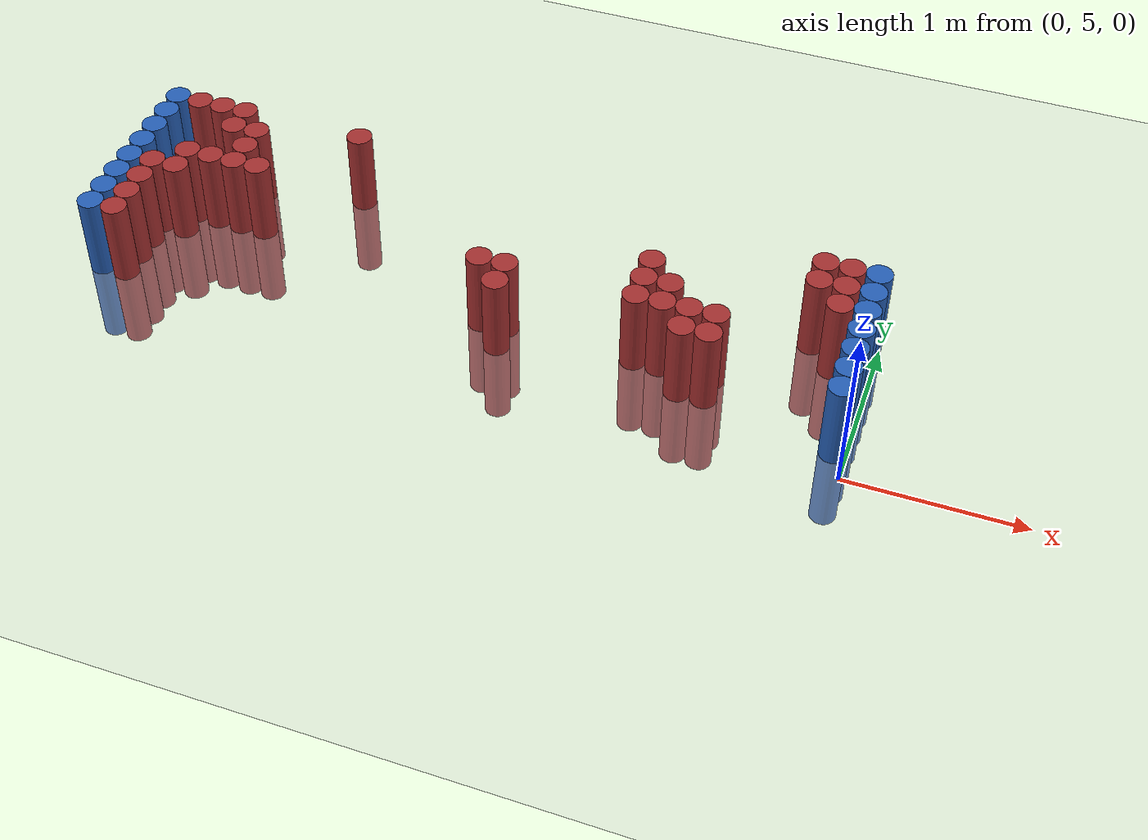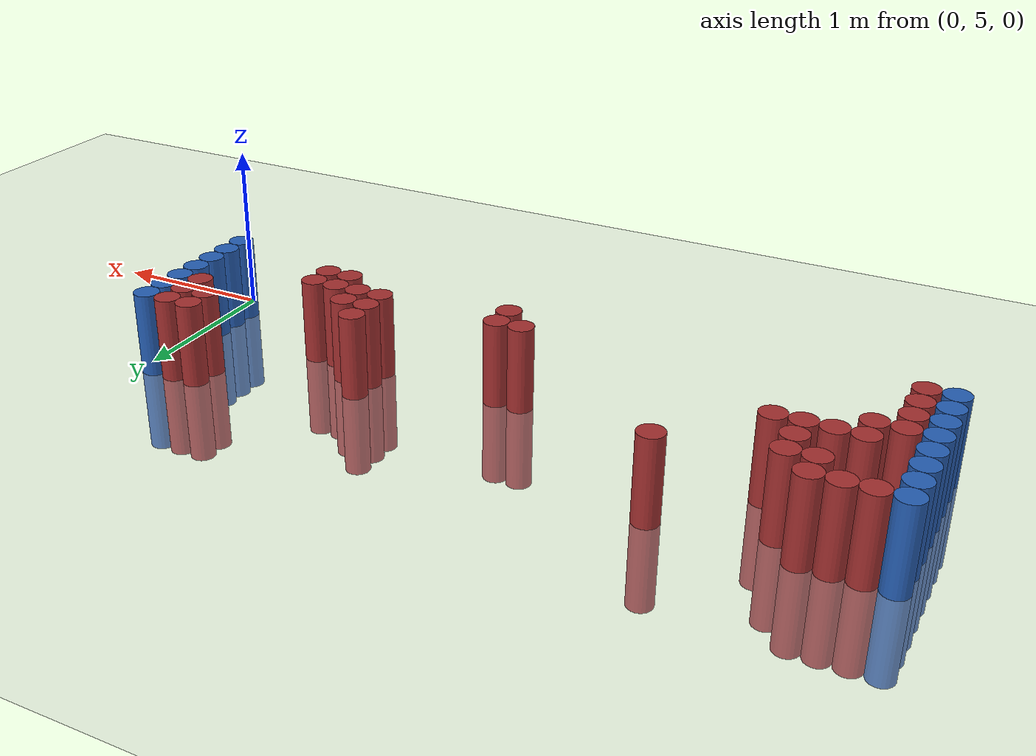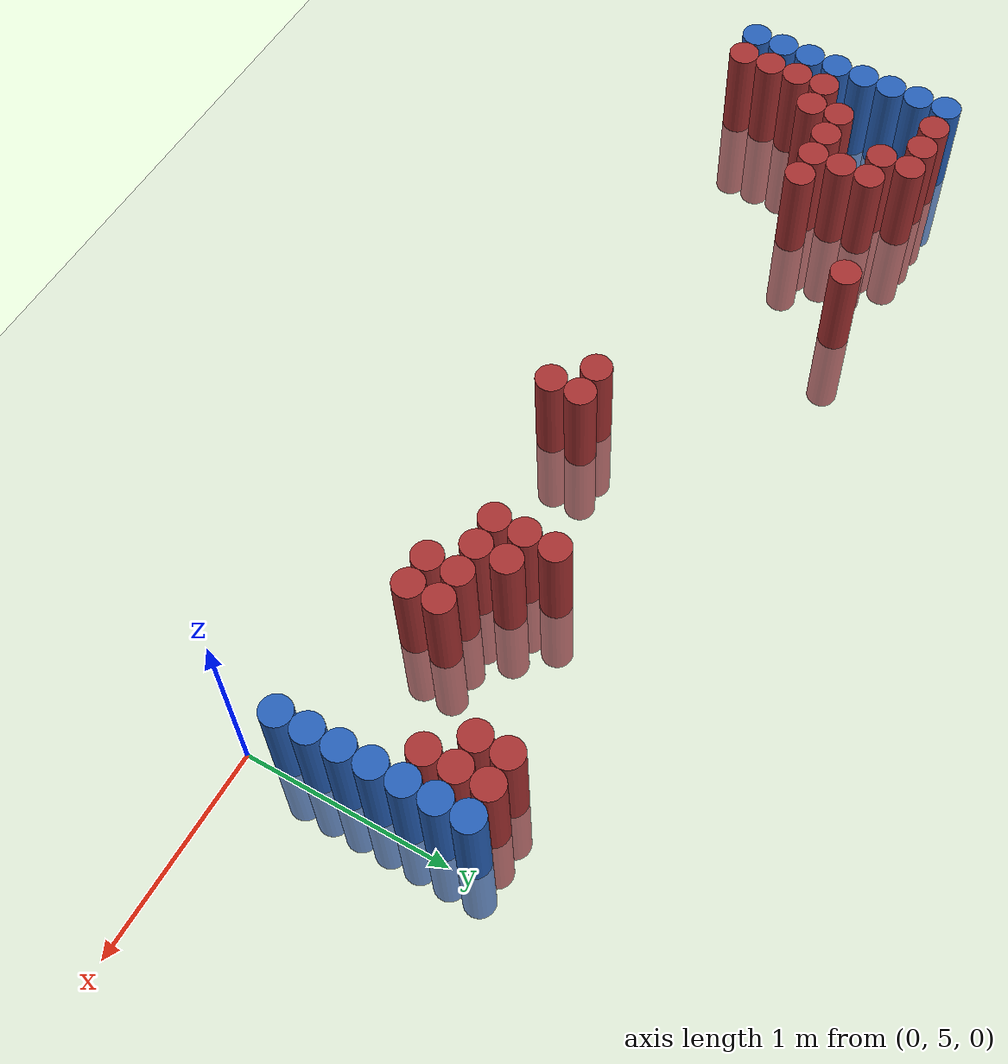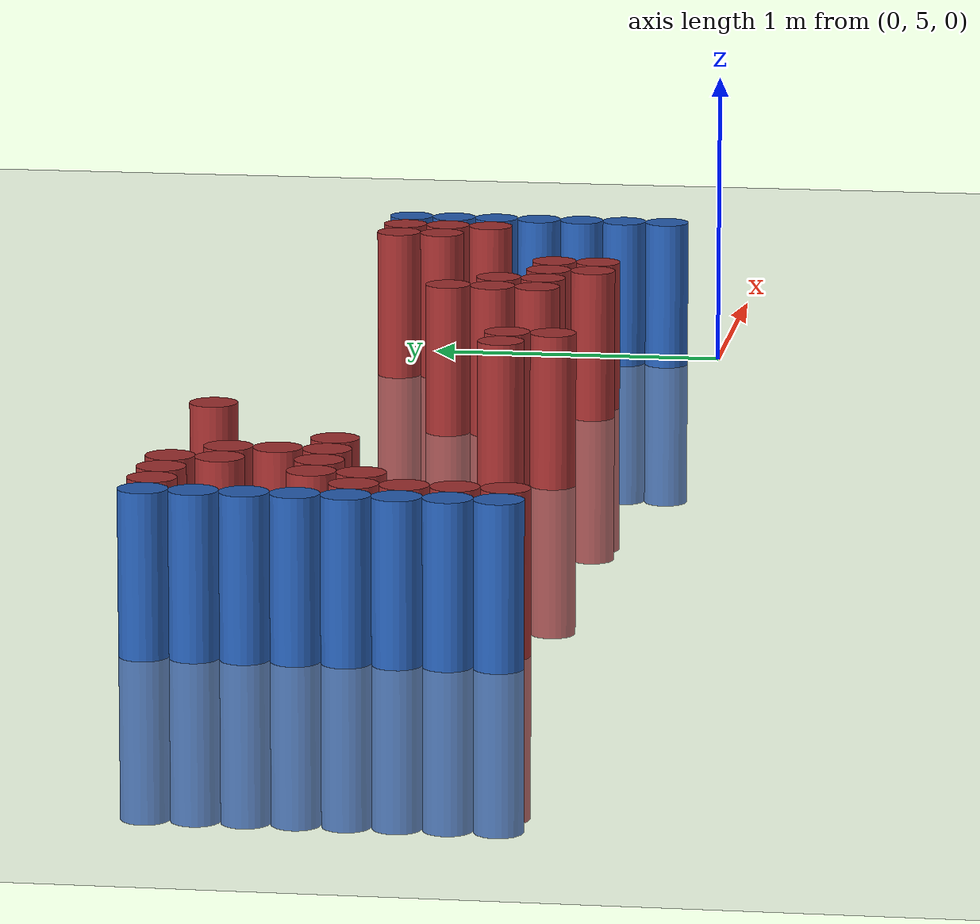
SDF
<sdf version="1.6">
 <world name="default">
  <model name="ground_plane">
   <static>1</static>
   <link name="link">
    <collision name="collision">
     <geometry><plane><normal>0 0 1</normal><size>100 100</size></plane></geometry>
     <surface><friction><ode><mu>100</mu><mu2>50</mu2></ode></friction></surface>
    </collision>
    <visual name="visual">
     <cast_shadows>0</cast_shadows>
     <geometry><plane><normal>0 0 1</normal><size>100 100</size></plane></geometry>
     <material>
      <script><uri>file://media/materials/scripts/gazebo.material</uri><name>Gazebo/Grey</name></script>
     </material>
    </visual>
   </link>
  </model>
  <model name="unit_cylinder_96">
   <static>1</static>
   <pose>-4.425000 5.175000 0.000000 0.000000 0.000000 0.000000</pose>
   <link name="link">
    <inertial>
     <mass>1</mass>
     <inertia><ixx>0.145833</ixx><ixy>0</ixy><ixz>0</ixz><iyy>0.145833</iyy><iyz>0</iyz><izz>0.125</izz></inertia>
    </inertial>
    <collision name="collision">
     <geometry><cylinder><radius>0.075000</radius><length>1</length></cylinder></geometry>
    </collision>
    <visual name="visual">
     <geometry><cylinder><radius>0.075000</radius><length>1</length></cylinder></geometry>
     <material>
      <ambient>0.152000 0.379000 0.720000 1</ambient>
      <diffuse>0.152000 0.379000 0.720000 1</diffuse>
     </material>
     <material>
      <script><name>Gazebo/Grey</name><uri>file://media/materials/scripts/gazebo.material</uri></script>
     </material>
    </visual>
   </link>
  </model>
  <model name="unit_cylinder_97">
   <static>1</static>
   <pose>-4.425000 5.325000 0.000000 0.000000 0.000000 0.000000</pose>
   <link name="link">
    <inertial>
     <mass>1</mass>
     <inertia><ixx>0.145833</ixx><ixy>0</ixy><ixz>0</ixz><iyy>0.145833</iyy><iyz>0</iyz><izz>0.125</izz></inertia>
    </inertial>
    <collision name="collision">
     <geometry><cylinder><radius>0.075000</radius><length>1</length></cylinder></geometry>
    </collision>
    <visual name="visual">
     <geometry><cylinder><radius>0.075000</radius><length>1</length></cylinder></geometry>
     <material>
      <ambient>0.152000 0.379000 0.720000 1</ambient>
      <diffuse>0.152000 0.379000 0.720000 1</diffuse>
     </material>
     <material>
      <script><name>Gazebo/Grey</name><uri>file://media/materials/scripts/gazebo.material</uri></script>
     </material>
    </visual>
   </link>
  </model>
  <model name="unit_cylinder_98">
   <static>1</static>
   <pose>-4.425000 5.475000 0.000000 0.000000 0.000000 0.000000</pose>
   <link name="link">
    <inertial>
     <mass>1</mass>
     <inertia><ixx>0.145833</ixx><ixy>0</ixy><ixz>0</ixz><iyy>0.145833</iyy><iyz>0</iyz><izz>0.125</izz></inertia>
    </inertial>
    <collision name="collision">
     <geometry><cylinder><radius>0.075000</radius><length>1</length></cylinder></geometry>
    </collision>
    <visual name="visual">
     <geometry><cylinder><radius>0.075000</radius><length>1</length></cylinder></geometry>
     <material>
      <ambient>0.152000 0.379000 0.720000 1</ambient>
      <diffuse>0.152000 0.379000 0.720000 1</diffuse>
     </material>
     <material>
      <script><name>Gazebo/Grey</name><uri>file://media/materials/scripts/gazebo.material</uri></script>
     </material>
    </visual>
   </link>
  </model>
  <model name="unit_cylinder_99">
   <static>1</static>
   <pose>-4.425000 5.625000 0.000000 0.000000 0.000000 0.000000</pose>
   <link name="link">
    <inertial>
     <mass>1</mass>
     <inertia><ixx>0.145833</ixx><ixy>0</ixy><ixz>0</ixz><iyy>0.145833</iyy><iyz>0</iyz><izz>0.125</izz></inertia>
    </inertial>
    <collision name="collision">
     <geometry><cylinder><radius>0.075000</radius><length>1</length></cylinder></geometry>
    </collision>
    <visual name="visual">
     <geometry><cylinder><radius>0.075000</radius><length>1</length></cylinder></geometry>
     <material>
      <ambient>0.152000 0.379000 0.720000 1</ambient>
      <diffuse>0.152000 0.379000 0.720000 1</diffuse>
     </material>
     <material>
      <script><name>Gazebo/Grey</name><uri>file://media/materials/scripts/gazebo.material</uri></script>
     </material>
    </visual>
   </link>
  </model>
  <model name="unit_cylinder_100">
   <static>1</static>
   <pose>-4.425000 5.775000 0.000000 0.000000 0.000000 0.000000</pose>
   <link name="link">
    <inertial>
     <mass>1</mass>
     <inertia><ixx>0.145833</ixx><ixy>0</ixy><ixz>0</ixz><iyy>0.145833</iyy><iyz>0</iyz><izz>0.125</izz></inertia>
    </inertial>
    <collision name="collision">
     <geometry><cylinder><radius>0.075000</radius><length>1</length></cylinder></geometry>
    </collision>
    <visual name="visual">
     <geometry><cylinder><radius>0.075000</radius><length>1</length></cylinder></geometry>
     <material>
      <ambient>0.152000 0.379000 0.720000 1</ambient>
      <diffuse>0.152000 0.379000 0.720000 1</diffuse>
     </material>
     <material>
      <script><name>Gazebo/Grey</name><uri>file://media/materials/scripts/gazebo.material</uri></script>
     </material>
    </visual>
   </link>
  </model>
  <model name="unit_cylinder_101">
   <static>1</static>
   <pose>-4.425000 5.925000 0.000000 0.000000 0.000000 0.000000</pose>
   <link name="link">
    <inertial>
     <mass>1</mass>
     <inertia><ixx>0.145833</ixx><ixy>0</ixy><ixz>0</ixz><iyy>0.145833</iyy><iyz>0</iyz><izz>0.125</izz></inertia>
    </inertial>
    <collision name="collision">
     <geometry><cylinder><radius>0.075000</radius><length>1</length></cylinder></geometry>
    </collision>
    <visual name="visual">
     <geometry><cylinder><radius>0.075000</radius><length>1</length></cylinder></geometry>
     <material>
      <ambient>0.152000 0.379000 0.720000 1</ambient>
      <diffuse>0.152000 0.379000 0.720000 1</diffuse>
     </material>
     <material>
      <script><name>Gazebo/Grey</name><uri>file://media/materials/scripts/gazebo.material</uri></script>
     </material>
    </visual>
   </link>
  </model>
  <model name="unit_cylinder_102">
   <static>1</static>
   <pose>-4.425000 6.075000 0.000000 0.000000 0.000000 0.000000</pose>
   <link name="link">
    <inertial>
     <mass>1</mass>
     <inertia><ixx>0.145833</ixx><ixy>0</ixy><ixz>0</ixz><iyy>0.145833</iyy><iyz>0</iyz><izz>0.125</izz></inertia>
    </inertial>
    <collision name="collision">
     <geometry><cylinder><radius>0.075000</radius><length>1</length></cylinder></geometry>
    </collision>
    <visual name="visual">
     <geometry><cylinder><radius>0.075000</radius><length>1</length></cylinder></geometry>
     <material>
      <ambient>0.152000 0.379000 0.720000 1</ambient>
      <diffuse>0.152000 0.379000 0.720000 1</diffuse>
     </material>
     <material>
      <script><name>Gazebo/Grey</name><uri>file://media/materials/scripts/gazebo.material</uri></script>
     </material>
    </visual>
   </link>
  </model>
  <model name="unit_cylinder_103">
   <static>1</static>
   <pose>-4.425000 6.225000 0.000000 0.000000 0.000000 0.000000</pose>
   <link name="link">
    <inertial>
     <mass>1</mass>
     <inertia><ixx>0.145833</ixx><ixy>0</ixy><ixz>0</ixz><iyy>0.145833</iyy><iyz>0</iyz><izz>0.125</izz></inertia>
    </inertial>
    <collision name="collision">
     <geometry><cylinder><radius>0.075000</radius><length>1</length></cylinder></geometry>
    </collision>
    <visual name="visual">
     <geometry><cylinder><radius>0.075000</radius><length>1</length></cylinder></geometry>
     <material>
      <ambient>0.152000 0.379000 0.720000 1</ambient>
      <diffuse>0.152000 0.379000 0.720000 1</diffuse>
     </material>
     <material>
      <script><name>Gazebo/Grey</name><uri>file://media/materials/scripts/gazebo.material</uri></script>
     </material>
    </visual>
   </link>
  </model>
  <model name="unit_cylinder_126">
   <static>1</static>
   <pose>-4.275000 5.175000 0.000000 0.000000 0.000000 0.000000</pose>
   <link name="link">
    <inertial>
     <mass>1</mass>
     <inertia><ixx>0.145833</ixx><ixy>0</ixy><ixz>0</ixz><iyy>0.145833</iyy><iyz>0</iyz><izz>0.125</izz></inertia>
    </inertial>
    <collision name="collision">
     <geometry><cylinder><radius>0.075000</radius><length>1</length></cylinder></geometry>
    </collision>
    <visual name="visual">
     <geometry><cylinder><radius>0.075000</radius><length>1</length></cylinder></geometry>
     <material>
      <ambient>0.648000 0.192000 0.192000 1</ambient>
      <diffuse>0.648000 0.192000 0.192000 1</diffuse>
     </material>
     <material>
      <script><name>Gazebo/Grey</name><uri>file://media/materials/scripts/gazebo.material</uri></script>
     </material>
    </visual>
   </link>
  </model>
  <model name="unit_cylinder_127">
   <static>1</static>
   <pose>-4.275000 5.325000 0.000000 0.000000 0.000000 0.000000</pose>
   <link name="link">
    <inertial>
     <mass>1</mass>
     <inertia><ixx>0.145833</ixx><ixy>0</ixy><ixz>0</ixz><iyy>0.145833</iyy><iyz>0</iyz><izz>0.125</izz></inertia>
    </inertial>
    <collision name="collision">
     <geometry><cylinder><radius>0.075000</radius><length>1</length></cylinder></geometry>
    </collision>
    <visual name="visual">
     <geometry><cylinder><radius>0.075000</radius><length>1</length></cylinder></geometry>
     <material>
      <ambient>0.648000 0.192000 0.192000 1</ambient>
      <diffuse>0.648000 0.192000 0.192000 1</diffuse>
     </material>
     <material>
      <script><name>Gazebo/Grey</name><uri>file://media/materials/scripts/gazebo.material</uri></script>
     </material>
    </visual>
   </link>
  </model>
  <model name="unit_cylinder_128">
   <static>1</static>
   <pose>-4.275000 5.475000 0.000000 0.000000 0.000000 0.000000</pose>
   <link name="link">
    <inertial>
     <mass>1</mass>
     <inertia><ixx>0.145833</ixx><ixy>0</ixy><ixz>0</ixz><iyy>0.145833</iyy><iyz>0</iyz><izz>0.125</izz></inertia>
    </inertial>
    <collision name="collision">
     <geometry><cylinder><radius>0.075000</radius><length>1</length></cylinder></geometry>
    </collision>
    <visual name="visual">
     <geometry><cylinder><radius>0.075000</radius><length>1</length></cylinder></geometry>
     <material>
      <ambient>0.648000 0.192000 0.192000 1</ambient>
      <diffuse>0.648000 0.192000 0.192000 1</diffuse>
     </material>
     <material>
      <script><name>Gazebo/Grey</name><uri>file://media/materials/scripts/gazebo.material</uri></script>
     </material>
    </visual>
   </link>
  </model>
  <model name="unit_cylinder_129">
   <static>1</static>
   <pose>-4.275000 5.625000 0.000000 0.000000 0.000000 0.000000</pose>
   <link name="link">
    <inertial>
     <mass>1</mass>
     <inertia><ixx>0.145833</ixx><ixy>0</ixy><ixz>0</ixz><iyy>0.145833</iyy><iyz>0</iyz><izz>0.125</izz></inertia>
    </inertial>
    <collision name="collision">
     <geometry><cylinder><radius>0.075000</radius><length>1</length></cylinder></geometry>
    </collision>
    <visual name="visual">
     <geometry><cylinder><radius>0.075000</radius><length>1</length></cylinder></geometry>
     <material>
      <ambient>0.648000 0.192000 0.192000 1</ambient>
      <diffuse>0.648000 0.192000 0.192000 1</diffuse>
     </material>
     <material>
      <script><name>Gazebo/Grey</name><uri>file://media/materials/scripts/gazebo.material</uri></script>
     </material>
    </visual>
   </link>
  </model>
  <model name="unit_cylinder_130">
   <static>1</static>
   <pose>-4.275000 6.225000 0.000000 0.000000 0.000000 0.000000</pose>
   <link name="link">
    <inertial>
     <mass>1</mass>
     <inertia><ixx>0.145833</ixx><ixy>0</ixy><ixz>0</ixz><iyy>0.145833</iyy><iyz>0</iyz><izz>0.125</izz></inertia>
    </inertial>
    <collision name="collision">
     <geometry><cylinder><radius>0.075000</radius><length>1</length></cylinder></geometry>
    </collision>
    <visual name="visual">
     <geometry><cylinder><radius>0.075000</radius><length>1</length></cylinder></geometry>
     <material>
      <ambient>0.648000 0.192000 0.192000 1</ambient>
      <diffuse>0.648000 0.192000 0.192000 1</diffuse>
     </material>
     <material>
      <script><name>Gazebo/Grey</name><uri>file://media/materials/scripts/gazebo.material</uri></script>
     </material>
    </visual>
   </link>
  </model>
  <model name="unit_cylinder_140">
   <static>1</static>
   <pose>-4.125000 5.625000 0.000000 0.000000 0.000000 0.000000</pose>
   <link name="link">
    <inertial>
     <mass>1</mass>
     <inertia><ixx>0.145833</ixx><ixy>0</ixy><ixz>0</ixz><iyy>0.145833</iyy><iyz>0</iyz><izz>0.125</izz></inertia>
    </inertial>
    <collision name="collision">
     <geometry><cylinder><radius>0.075000</radius><length>1</length></cylinder></geometry>
    </collision>
    <visual name="visual">
     <geometry><cylinder><radius>0.075000</radius><length>1</length></cylinder></geometry>
     <material>
      <ambient>0.648000 0.192000 0.192000 1</ambient>
      <diffuse>0.648000 0.192000 0.192000 1</diffuse>
     </material>
     <material>
      <script><name>Gazebo/Grey</name><uri>file://media/materials/scripts/gazebo.material</uri></script>
     </material>
    </visual>
   </link>
  </model>
  <model name="unit_cylinder_141">
   <static>1</static>
   <pose>-4.125000 5.775000 0.000000 0.000000 0.000000 0.000000</pose>
   <link name="link">
    <inertial>
     <mass>1</mass>
     <inertia><ixx>0.145833</ixx><ixy>0</ixy><ixz>0</ixz><iyy>0.145833</iyy><iyz>0</iyz><izz>0.125</izz></inertia>
    </inertial>
    <collision name="collision">
     <geometry><cylinder><radius>0.075000</radius><length>1</length></cylinder></geometry>
    </collision>
    <visual name="visual">
     <geometry><cylinder><radius>0.075000</radius><length>1</length></cylinder></geometry>
     <material>
      <ambient>0.648000 0.192000 0.192000 1</ambient>
      <diffuse>0.648000 0.192000 0.192000 1</diffuse>
     </material>
     <material>
      <script><name>Gazebo/Grey</name><uri>file://media/materials/scripts/gazebo.material</uri></script>
     </material>
    </visual>
   </link>
  </model>
  <model name="unit_cylinder_142">
   <static>1</static>
   <pose>-4.125000 6.225000 0.000000 0.000000 0.000000 0.000000</pose>
   <link name="link">
    <inertial>
     <mass>1</mass>
     <inertia><ixx>0.145833</ixx><ixy>0</ixy><ixz>0</ixz><iyy>0.145833</iyy><iyz>0</iyz><izz>0.125</izz></inertia>
    </inertial>
    <collision name="collision">
     <geometry><cylinder><radius>0.075000</radius><length>1</length></cylinder></geometry>
    </collision>
    <visual name="visual">
     <geometry><cylinder><radius>0.075000</radius><length>1</length></cylinder></geometry>
     <material>
      <ambient>0.648000 0.192000 0.192000 1</ambient>
      <diffuse>0.648000 0.192000 0.192000 1</diffuse>
     </material>
     <material>
      <script><name>Gazebo/Grey</name><uri>file://media/materials/scripts/gazebo.material</uri></script>
     </material>
    </visual>
   </link>
  </model>
  <model name="unit_cylinder_153">
   <static>1</static>
   <pose>-3.975000 5.775000 0.000000 0.000000 0.000000 0.000000</pose>
   <link name="link">
    <inertial>
     <mass>1</mass>
     <inertia><ixx>0.145833</ixx><ixy>0</ixy><ixz>0</ixz><iyy>0.145833</iyy><iyz>0</iyz><izz>0.125</izz></inertia>
    </inertial>
    <collision name="collision">
     <geometry><cylinder><radius>0.075000</radius><length>1</length></cylinder></geometry>
    </collision>
    <visual name="visual">
     <geometry><cylinder><radius>0.075000</radius><length>1</length></cylinder></geometry>
     <material>
      <ambient>0.648000 0.192000 0.192000 1</ambient>
      <diffuse>0.648000 0.192000 0.192000 1</diffuse>
     </material>
     <material>
      <script><name>Gazebo/Grey</name><uri>file://media/materials/scripts/gazebo.material</uri></script>
     </material>
    </visual>
   </link>
  </model>
  <model name="unit_cylinder_154">
   <static>1</static>
   <pose>-3.975000 6.075000 0.000000 0.000000 0.000000 0.000000</pose>
   <link name="link">
    <inertial>
     <mass>1</mass>
     <inertia><ixx>0.145833</ixx><ixy>0</ixy><ixz>0</ixz><iyy>0.145833</iyy><iyz>0</iyz><izz>0.125</izz></inertia>
    </inertial>
    <collision name="collision">
     <geometry><cylinder><radius>0.075000</radius><length>1</length></cylinder></geometry>
    </collision>
    <visual name="visual">
     <geometry><cylinder><radius>0.075000</radius><length>1</length></cylinder></geometry>
     <material>
      <ambient>0.648000 0.192000 0.192000 1</ambient>
      <diffuse>0.648000 0.192000 0.192000 1</diffuse>
     </material>
     <material>
      <script><name>Gazebo/Grey</name><uri>file://media/materials/scripts/gazebo.material</uri></script>
     </material>
    </visual>
   </link>
  </model>
  <model name="unit_cylinder_155">
   <static>1</static>
   <pose>-3.975000 6.225000 0.000000 0.000000 0.000000 0.000000</pose>
   <link name="link">
    <inertial>
     <mass>1</mass>
     <inertia><ixx>0.145833</ixx><ixy>0</ixy><ixz>0</ixz><iyy>0.145833</iyy><iyz>0</iyz><izz>0.125</izz></inertia>
    </inertial>
    <collision name="collision">
     <geometry><cylinder><radius>0.075000</radius><length>1</length></cylinder></geometry>
    </collision>
    <visual name="visual">
     <geometry><cylinder><radius>0.075000</radius><length>1</length></cylinder></geometry>
     <material>
      <ambient>0.648000 0.192000 0.192000 1</ambient>
      <diffuse>0.648000 0.192000 0.192000 1</diffuse>
     </material>
     <material>
      <script><name>Gazebo/Grey</name><uri>file://media/materials/scripts/gazebo.material</uri></script>
     </material>
    </visual>
   </link>
  </model>
  <model name="unit_cylinder_160">
   <static>1</static>
   <pose>-3.825000 5.775000 0.000000 0.000000 0.000000 0.000000</pose>
   <link name="link">
    <inertial>
     <mass>1</mass>
     <inertia><ixx>0.145833</ixx><ixy>0</ixy><ixz>0</ixz><iyy>0.145833</iyy><iyz>0</iyz><izz>0.125</izz></inertia>
    </inertial>
    <collision name="collision">
     <geometry><cylinder><radius>0.075000</radius><length>1</length></cylinder></geometry>
    </collision>
    <visual name="visual">
     <geometry><cylinder><radius>0.075000</radius><length>1</length></cylinder></geometry>
     <material>
      <ambient>0.648000 0.192000 0.192000 1</ambient>
      <diffuse>0.648000 0.192000 0.192000 1</diffuse>
     </material>
     <material>
      <script><name>Gazebo/Grey</name><uri>file://media/materials/scripts/gazebo.material</uri></script>
     </material>
    </visual>
   </link>
  </model>
  <model name="unit_cylinder_161">
   <static>1</static>
   <pose>-3.825000 5.925000 0.000000 0.000000 0.000000 0.000000</pose>
   <link name="link">
    <inertial>
     <mass>1</mass>
     <inertia><ixx>0.145833</ixx><ixy>0</ixy><ixz>0</ixz><iyy>0.145833</iyy><iyz>0</iyz><izz>0.125</izz></inertia>
    </inertial>
    <collision name="collision">
     <geometry><cylinder><radius>0.075000</radius><length>1</length></cylinder></geometry>
    </collision>
    <visual name="visual">
     <geometry><cylinder><radius>0.075000</radius><length>1</length></cylinder></geometry>
     <material>
      <ambient>0.648000 0.192000 0.192000 1</ambient>
      <diffuse>0.648000 0.192000 0.192000 1</diffuse>
     </material>
     <material>
      <script><name>Gazebo/Grey</name><uri>file://media/materials/scripts/gazebo.material</uri></script>
     </material>
    </visual>
   </link>
  </model>
  <model name="unit_cylinder_162">
   <static>1</static>
   <pose>-3.825000 6.075000 0.000000 0.000000 0.000000 0.000000</pose>
   <link name="link">
    <inertial>
     <mass>1</mass>
     <inertia><ixx>0.145833</ixx><ixy>0</ixy><ixz>0</ixz><iyy>0.145833</iyy><iyz>0</iyz><izz>0.125</izz></inertia>
    </inertial>
    <collision name="collision">
     <geometry><cylinder><radius>0.075000</radius><length>1</length></cylinder></geometry>
    </collision>
    <visual name="visual">
     <geometry><cylinder><radius>0.075000</radius><length>1</length></cylinder></geometry>
     <material>
      <ambient>0.648000 0.192000 0.192000 1</ambient>
      <diffuse>0.648000 0.192000 0.192000 1</diffuse>
     </material>
     <material>
      <script><name>Gazebo/Grey</name><uri>file://media/materials/scripts/gazebo.material</uri></script>
     </material>
    </visual>
   </link>
  </model>
  <model name="unit_cylinder_166">
   <static>1</static>
   <pose>-3.675000 5.775000 0.000000 0.000000 0.000000 0.000000</pose>
   <link name="link">
    <inertial>
     <mass>1</mass>
     <inertia><ixx>0.145833</ixx><ixy>0</ixy><ixz>0</ixz><iyy>0.145833</iyy><iyz>0</iyz><izz>0.125</izz></inertia>
    </inertial>
    <collision name="collision">
     <geometry><cylinder><radius>0.075000</radius><length>1</length></cylinder></geometry>
    </collision>
    <visual name="visual">
     <geometry><cylinder><radius>0.075000</radius><length>1</length></cylinder></geometry>
     <material>
      <ambient>0.648000 0.192000 0.192000 1</ambient>
      <diffuse>0.648000 0.192000 0.192000 1</diffuse>
     </material>
     <material>
      <script><name>Gazebo/Grey</name><uri>file://media/materials/scripts/gazebo.material</uri></script>
     </material>
    </visual>
   </link>
  </model>
  <model name="unit_cylinder_179">
   <static>1</static>
   <pose>-3.225000 6.225000 0.000000 0.000000 0.000000 0.000000</pose>
   <link name="link">
    <inertial>
     <mass>1</mass>
     <inertia><ixx>0.145833</ixx><ixy>0</ixy><ixz>0</ixz><iyy>0.145833</iyy><iyz>0</iyz><izz>0.125</izz></inertia>
    </inertial>
    <collision name="collision">
     <geometry><cylinder><radius>0.075000</radius><length>1</length></cylinder></geometry>
    </collision>
    <visual name="visual">
     <geometry><cylinder><radius>0.075000</radius><length>1</length></cylinder></geometry>
     <material>
      <ambient>0.648000 0.192000 0.192000 1</ambient>
      <diffuse>0.648000 0.192000 0.192000 1</diffuse>
     </material>
     <material>
      <script><name>Gazebo/Grey</name><uri>file://media/materials/scripts/gazebo.material</uri></script>
     </material>
    </visual>
   </link>
  </model>
  <model name="unit_cylinder_212">
   <static>1</static>
   <pose>-2.175000 5.475000 0.000000 0.000000 0.000000 0.000000</pose>
   <link name="link">
    <inertial>
     <mass>1</mass>
     <inertia><ixx>0.145833</ixx><ixy>0</ixy><ixz>0</ixz><iyy>0.145833</iyy><iyz>0</iyz><izz>0.125</izz></inertia>
    </inertial>
    <collision name="collision">
     <geometry><cylinder><radius>0.075000</radius><length>1</length></cylinder></geometry>
    </collision>
    <visual name="visual">
     <geometry><cylinder><radius>0.075000</radius><length>1</length></cylinder></geometry>
     <material>
      <ambient>0.648000 0.192000 0.192000 1</ambient>
      <diffuse>0.648000 0.192000 0.192000 1</diffuse>
     </material>
     <material>
      <script><name>Gazebo/Grey</name><uri>file://media/materials/scripts/gazebo.material</uri></script>
     </material>
    </visual>
   </link>
  </model>
  <model name="unit_cylinder_216">
   <static>1</static>
   <pose>-2.025000 5.325000 0.000000 0.000000 0.000000 0.000000</pose>
   <link name="link">
    <inertial>
     <mass>1</mass>
     <inertia><ixx>0.145833</ixx><ixy>0</ixy><ixz>0</ixz><iyy>0.145833</iyy><iyz>0</iyz><izz>0.125</izz></inertia>
    </inertial>
    <collision name="collision">
     <geometry><cylinder><radius>0.075000</radius><length>1</length></cylinder></geometry>
    </collision>
    <visual name="visual">
     <geometry><cylinder><radius>0.075000</radius><length>1</length></cylinder></geometry>
     <material>
      <ambient>0.648000 0.192000 0.192000 1</ambient>
      <diffuse>0.648000 0.192000 0.192000 1</diffuse>
     </material>
     <material>
      <script><name>Gazebo/Grey</name><uri>file://media/materials/scripts/gazebo.material</uri></script>
     </material>
    </visual>
   </link>
  </model>
  <model name="unit_cylinder_217">
   <static>1</static>
   <pose>-2.025000 5.475000 0.000000 0.000000 0.000000 0.000000</pose>
   <link name="link">
    <inertial>
     <mass>1</mass>
     <inertia><ixx>0.145833</ixx><ixy>0</ixy><ixz>0</ixz><iyy>0.145833</iyy><iyz>0</iyz><izz>0.125</izz></inertia>
    </inertial>
    <collision name="collision">
     <geometry><cylinder><radius>0.075000</radius><length>1</length></cylinder></geometry>
    </collision>
    <visual name="visual">
     <geometry><cylinder><radius>0.075000</radius><length>1</length></cylinder></geometry>
     <material>
      <ambient>0.648000 0.192000 0.192000 1</ambient>
      <diffuse>0.648000 0.192000 0.192000 1</diffuse>
     </material>
     <material>
      <script><name>Gazebo/Grey</name><uri>file://media/materials/scripts/gazebo.material</uri></script>
     </material>
    </visual>
   </link>
  </model>
  <model name="unit_cylinder_222">
   <static>1</static>
   <pose>-1.275000 5.475000 0.000000 0.000000 0.000000 0.000000</pose>
   <link name="link">
    <inertial>
     <mass>1</mass>
     <inertia><ixx>0.145833</ixx><ixy>0</ixy><ixz>0</ixz><iyy>0.145833</iyy><iyz>0</iyz><izz>0.125</izz></inertia>
    </inertial>
    <collision name="collision">
     <geometry><cylinder><radius>0.075000</radius><length>1</length></cylinder></geometry>
    </collision>
    <visual name="visual">
     <geometry><cylinder><radius>0.075000</radius><length>1</length></cylinder></geometry>
     <material>
      <ambient>0.648000 0.192000 0.192000 1</ambient>
      <diffuse>0.648000 0.192000 0.192000 1</diffuse>
     </material>
     <material>
      <script><name>Gazebo/Grey</name><uri>file://media/materials/scripts/gazebo.material</uri></script>
     </material>
    </visual>
   </link>
  </model>
  <model name="unit_cylinder_223">
   <static>1</static>
   <pose>-1.275000 5.625000 0.000000 0.000000 0.000000 0.000000</pose>
   <link name="link">
    <inertial>
     <mass>1</mass>
     <inertia><ixx>0.145833</ixx><ixy>0</ixy><ixz>0</ixz><iyy>0.145833</iyy><iyz>0</iyz><izz>0.125</izz></inertia>
    </inertial>
    <collision name="collision">
     <geometry><cylinder><radius>0.075000</radius><length>1</length></cylinder></geometry>
    </collision>
    <visual name="visual">
     <geometry><cylinder><radius>0.075000</radius><length>1</length></cylinder></geometry>
     <material>
      <ambient>0.648000 0.192000 0.192000 1</ambient>
      <diffuse>0.648000 0.192000 0.192000 1</diffuse>
     </material>
     <material>
      <script><name>Gazebo/Grey</name><uri>file://media/materials/scripts/gazebo.material</uri></script>
     </material>
    </visual>
   </link>
  </model>
  <model name="unit_cylinder_224">
   <static>1</static>
   <pose>-1.275000 5.775000 0.000000 0.000000 0.000000 0.000000</pose>
   <link name="link">
    <inertial>
     <mass>1</mass>
     <inertia><ixx>0.145833</ixx><ixy>0</ixy><ixz>0</ixz><iyy>0.145833</iyy><iyz>0</iyz><izz>0.125</izz></inertia>
    </inertial>
    <collision name="collision">
     <geometry><cylinder><radius>0.075000</radius><length>1</length></cylinder></geometry>
    </collision>
    <visual name="visual">
     <geometry><cylinder><radius>0.075000</radius><length>1</length></cylinder></geometry>
     <material>
      <ambient>0.648000 0.192000 0.192000 1</ambient>
      <diffuse>0.648000 0.192000 0.192000 1</diffuse>
     </material>
     <material>
      <script><name>Gazebo/Grey</name><uri>file://media/materials/scripts/gazebo.material</uri></script>
     </material>
    </visual>
   </link>
  </model>
  <model name="unit_cylinder_227">
   <static>1</static>
   <pose>-1.125000 5.475000 0.000000 0.000000 0.000000 0.000000</pose>
   <link name="link">
    <inertial>
     <mass>1</mass>
     <inertia><ixx>0.145833</ixx><ixy>0</ixy><ixz>0</ixz><iyy>0.145833</iyy><iyz>0</iyz><izz>0.125</izz></inertia>
    </inertial>
    <collision name="collision">
     <geometry><cylinder><radius>0.075000</radius><length>1</length></cylinder></geometry>
    </collision>
    <visual name="visual">
     <geometry><cylinder><radius>0.075000</radius><length>1</length></cylinder></geometry>
     <material>
      <ambient>0.648000 0.192000 0.192000 1</ambient>
      <diffuse>0.648000 0.192000 0.192000 1</diffuse>
     </material>
     <material>
      <script><name>Gazebo/Grey</name><uri>file://media/materials/scripts/gazebo.material</uri></script>
     </material>
    </visual>
   </link>
  </model>
  <model name="unit_cylinder_228">
   <static>1</static>
   <pose>-1.125000 5.625000 0.000000 0.000000 0.000000 0.000000</pose>
   <link name="link">
    <inertial>
     <mass>1</mass>
     <inertia><ixx>0.145833</ixx><ixy>0</ixy><ixz>0</ixz><iyy>0.145833</iyy><iyz>0</iyz><izz>0.125</izz></inertia>
    </inertial>
    <collision name="collision">
     <geometry><cylinder><radius>0.075000</radius><length>1</length></cylinder></geometry>
    </collision>
    <visual name="visual">
     <geometry><cylinder><radius>0.075000</radius><length>1</length></cylinder></geometry>
     <material>
      <ambient>0.648000 0.192000 0.192000 1</ambient>
      <diffuse>0.648000 0.192000 0.192000 1</diffuse>
     </material>
     <material>
      <script><name>Gazebo/Grey</name><uri>file://media/materials/scripts/gazebo.material</uri></script>
     </material>
    </visual>
   </link>
  </model>
  <model name="unit_cylinder_230">
   <static>1</static>
   <pose>-0.975000 5.325000 0.000000 0.000000 0.000000 0.000000</pose>
   <link name="link">
    <inertial>
     <mass>1</mass>
     <inertia><ixx>0.145833</ixx><ixy>0</ixy><ixz>0</ixz><iyy>0.145833</iyy><iyz>0</iyz><izz>0.125</izz></inertia>
    </inertial>
    <collision name="collision">
     <geometry><cylinder><radius>0.075000</radius><length>1</length></cylinder></geometry>
    </collision>
    <visual name="visual">
     <geometry><cylinder><radius>0.075000</radius><length>1</length></cylinder></geometry>
     <material>
      <ambient>0.648000 0.192000 0.192000 1</ambient>
      <diffuse>0.648000 0.192000 0.192000 1</diffuse>
     </material>
     <material>
      <script><name>Gazebo/Grey</name><uri>file://media/materials/scripts/gazebo.material</uri></script>
     </material>
    </visual>
   </link>
  </model>
  <model name="unit_cylinder_231">
   <static>1</static>
   <pose>-0.975000 5.475000 0.000000 0.000000 0.000000 0.000000</pose>
   <link name="link">
    <inertial>
     <mass>1</mass>
     <inertia><ixx>0.145833</ixx><ixy>0</ixy><ixz>0</ixz><iyy>0.145833</iyy><iyz>0</iyz><izz>0.125</izz></inertia>
    </inertial>
    <collision name="collision">
     <geometry><cylinder><radius>0.075000</radius><length>1</length></cylinder></geometry>
    </collision>
    <visual name="visual">
     <geometry><cylinder><radius>0.075000</radius><length>1</length></cylinder></geometry>
     <material>
      <ambient>0.648000 0.192000 0.192000 1</ambient>
      <diffuse>0.648000 0.192000 0.192000 1</diffuse>
     </material>
     <material>
      <script><name>Gazebo/Grey</name><uri>file://media/materials/scripts/gazebo.material</uri></script>
     </material>
    </visual>
   </link>
  </model>
  <model name="unit_cylinder_233">
   <static>1</static>
   <pose>-0.825000 5.325000 0.000000 0.000000 0.000000 0.000000</pose>
   <link name="link">
    <inertial>
     <mass>1</mass>
     <inertia><ixx>0.145833</ixx><ixy>0</ixy><ixz>0</ixz><iyy>0.145833</iyy><iyz>0</iyz><izz>0.125</izz></inertia>
    </inertial>
    <collision name="collision">
     <geometry><cylinder><radius>0.075000</radius><length>1</length></cylinder></geometry>
    </collision>
    <visual name="visual">
     <geometry><cylinder><radius>0.075000</radius><length>1</length></cylinder></geometry>
     <material>
      <ambient>0.648000 0.192000 0.192000 1</ambient>
      <diffuse>0.648000 0.192000 0.192000 1</diffuse>
     </material>
     <material>
      <script><name>Gazebo/Grey</name><uri>file://media/materials/scripts/gazebo.material</uri></script>
     </material>
    </visual>
   </link>
  </model>
  <model name="unit_cylinder_234">
   <static>1</static>
   <pose>-0.825000 5.475000 0.000000 0.000000 0.000000 0.000000</pose>
   <link name="link">
    <inertial>
     <mass>1</mass>
     <inertia><ixx>0.145833</ixx><ixy>0</ixy><ixz>0</ixz><iyy>0.145833</iyy><iyz>0</iyz><izz>0.125</izz></inertia>
    </inertial>
    <collision name="collision">
     <geometry><cylinder><radius>0.075000</radius><length>1</length></cylinder></geometry>
    </collision>
    <visual name="visual">
     <geometry><cylinder><radius>0.075000</radius><length>1</length></cylinder></geometry>
     <material>
      <ambient>0.648000 0.192000 0.192000 1</ambient>
      <diffuse>0.648000 0.192000 0.192000 1</diffuse>
     </material>
     <material>
      <script><name>Gazebo/Grey</name><uri>file://media/materials/scripts/gazebo.material</uri></script>
     </material>
    </visual>
   </link>
  </model>
  <model name="unit_cylinder_243">
   <static>1</static>
   <pose>-0.375000 5.925000 0.000000 0.000000 0.000000 0.000000</pose>
   <link name="link">
    <inertial>
     <mass>1</mass>
     <inertia><ixx>0.145833</ixx><ixy>0</ixy><ixz>0</ixz><iyy>0.145833</iyy><iyz>0</iyz><izz>0.125</izz></inertia>
    </inertial>
    <collision name="collision">
     <geometry><cylinder><radius>0.075000</radius><length>1</length></cylinder></geometry>
    </collision>
    <visual name="visual">
     <geometry><cylinder><radius>0.075000</radius><length>1</length></cylinder></geometry>
     <material>
      <ambient>0.648000 0.192000 0.192000 1</ambient>
      <diffuse>0.648000 0.192000 0.192000 1</diffuse>
     </material>
     <material>
      <script><name>Gazebo/Grey</name><uri>file://media/materials/scripts/gazebo.material</uri></script>
     </material>
    </visual>
   </link>
  </model>
  <model name="unit_cylinder_244">
   <static>1</static>
   <pose>-0.375000 6.075000 0.000000 0.000000 0.000000 0.000000</pose>
   <link name="link">
    <inertial>
     <mass>1</mass>
     <inertia><ixx>0.145833</ixx><ixy>0</ixy><ixz>0</ixz><iyy>0.145833</iyy><iyz>0</iyz><izz>0.125</izz></inertia>
    </inertial>
    <collision name="collision">
     <geometry><cylinder><radius>0.075000</radius><length>1</length></cylinder></geometry>
    </collision>
    <visual name="visual">
     <geometry><cylinder><radius>0.075000</radius><length>1</length></cylinder></geometry>
     <material>
      <ambient>0.648000 0.192000 0.192000 1</ambient>
      <diffuse>0.648000 0.192000 0.192000 1</diffuse>
     </material>
     <material>
      <script><name>Gazebo/Grey</name><uri>file://media/materials/scripts/gazebo.material</uri></script>
     </material>
    </visual>
   </link>
  </model>
  <model name="unit_cylinder_248">
   <static>1</static>
   <pose>-0.225000 5.775000 0.000000 0.000000 0.000000 0.000000</pose>
   <link name="link">
    <inertial>
     <mass>1</mass>
     <inertia><ixx>0.145833</ixx><ixy>0</ixy><ixz>0</ixz><iyy>0.145833</iyy><iyz>0</iyz><izz>0.125</izz></inertia>
    </inertial>
    <collision name="collision">
     <geometry><cylinder><radius>0.075000</radius><length>1</length></cylinder></geometry>
    </collision>
    <visual name="visual">
     <geometry><cylinder><radius>0.075000</radius><length>1</length></cylinder></geometry>
     <material>
      <ambient>0.648000 0.192000 0.192000 1</ambient>
      <diffuse>0.648000 0.192000 0.192000 1</diffuse>
     </material>
     <material>
      <script><name>Gazebo/Grey</name><uri>file://media/materials/scripts/gazebo.material</uri></script>
     </material>
    </visual>
   </link>
  </model>
  <model name="unit_cylinder_249">
   <static>1</static>
   <pose>-0.225000 5.925000 0.000000 0.000000 0.000000 0.000000</pose>
   <link name="link">
    <inertial>
     <mass>1</mass>
     <inertia><ixx>0.145833</ixx><ixy>0</ixy><ixz>0</ixz><iyy>0.145833</iyy><iyz>0</iyz><izz>0.125</izz></inertia>
    </inertial>
    <collision name="collision">
     <geometry><cylinder><radius>0.075000</radius><length>1</length></cylinder></geometry>
    </collision>
    <visual name="visual">
     <geometry><cylinder><radius>0.075000</radius><length>1</length></cylinder></geometry>
     <material>
      <ambient>0.648000 0.192000 0.192000 1</ambient>
      <diffuse>0.648000 0.192000 0.192000 1</diffuse>
     </material>
     <material>
      <script><name>Gazebo/Grey</name><uri>file://media/materials/scripts/gazebo.material</uri></script>
     </material>
    </visual>
   </link>
  </model>
  <model name="unit_cylinder_250">
   <static>1</static>
   <pose>-0.225000 6.075000 0.000000 0.000000 0.000000 0.000000</pose>
   <link name="link">
    <inertial>
     <mass>1</mass>
     <inertia><ixx>0.145833</ixx><ixy>0</ixy><ixz>0</ixz><iyy>0.145833</iyy><iyz>0</iyz><izz>0.125</izz></inertia>
    </inertial>
    <collision name="collision">
     <geometry><cylinder><radius>0.075000</radius><length>1</length></cylinder></geometry>
    </collision>
    <visual name="visual">
     <geometry><cylinder><radius>0.075000</radius><length>1</length></cylinder></geometry>
     <material>
      <ambient>0.648000 0.192000 0.192000 1</ambient>
      <diffuse>0.648000 0.192000 0.192000 1</diffuse>
     </material>
     <material>
      <script><name>Gazebo/Grey</name><uri>file://media/materials/scripts/gazebo.material</uri></script>
     </material>
    </visual>
   </link>
  </model>
  <model name="unit_cylinder_257">
   <static>1</static>
   <pose>-0.075000 5.175000 0.000000 0.000000 0.000000 0.000000</pose>
   <link name="link">
    <inertial>
     <mass>1</mass>
     <inertia><ixx>0.145833</ixx><ixy>0</ixy><ixz>0</ixz><iyy>0.145833</iyy><iyz>0</iyz><izz>0.125</izz></inertia>
    </inertial>
    <collision name="collision">
     <geometry><cylinder><radius>0.075000</radius><length>1</length></cylinder></geometry>
    </collision>
    <visual name="visual">
     <geometry><cylinder><radius>0.075000</radius><length>1</length></cylinder></geometry>
     <material>
      <ambient>0.152000 0.379000 0.720000 1</ambient>
      <diffuse>0.152000 0.379000 0.720000 1</diffuse>
     </material>
     <material>
      <script><name>Gazebo/Grey</name><uri>file://media/materials/scripts/gazebo.material</uri></script>
     </material>
    </visual>
   </link>
  </model>
  <model name="unit_cylinder_258">
   <static>1</static>
   <pose>-0.075000 5.325000 0.000000 0.000000 0.000000 0.000000</pose>
   <link name="link">
    <inertial>
     <mass>1</mass>
     <inertia><ixx>0.145833</ixx><ixy>0</ixy><ixz>0</ixz><iyy>0.145833</iyy><iyz>0</iyz><izz>0.125</izz></inertia>
    </inertial>
    <collision name="collision">
     <geometry><cylinder><radius>0.075000</radius><length>1</length></cylinder></geometry>
    </collision>
    <visual name="visual">
     <geometry><cylinder><radius>0.075000</radius><length>1</length></cylinder></geometry>
     <material>
      <ambient>0.152000 0.379000 0.720000 1</ambient>
      <diffuse>0.152000 0.379000 0.720000 1</diffuse>
     </material>
     <material>
      <script><name>Gazebo/Grey</name><uri>file://media/materials/scripts/gazebo.material</uri></script>
     </material>
    </visual>
   </link>
  </model>
  <model name="unit_cylinder_259">
   <static>1</static>
   <pose>-0.075000 5.475000 0.000000 0.000000 0.000000 0.000000</pose>
   <link name="link">
    <inertial>
     <mass>1</mass>
     <inertia><ixx>0.145833</ixx><ixy>0</ixy><ixz>0</ixz><iyy>0.145833</iyy><iyz>0</iyz><izz>0.125</izz></inertia>
    </inertial>
    <collision name="collision">
     <geometry><cylinder><radius>0.075000</radius><length>1</length></cylinder></geometry>
    </collision>
    <visual name="visual">
     <geometry><cylinder><radius>0.075000</radius><length>1</length></cylinder></geometry>
     <material>
      <ambient>0.152000 0.379000 0.720000 1</ambient>
      <diffuse>0.152000 0.379000 0.720000 1</diffuse>
     </material>
     <material>
      <script><name>Gazebo/Grey</name><uri>file://media/materials/scripts/gazebo.material</uri></script>
     </material>
    </visual>
   </link>
  </model>
  <model name="unit_cylinder_260">
   <static>1</static>
   <pose>-0.075000 5.625000 0.000000 0.000000 0.000000 0.000000</pose>
   <link name="link">
    <inertial>
     <mass>1</mass>
     <inertia><ixx>0.145833</ixx><ixy>0</ixy><ixz>0</ixz><iyy>0.145833</iyy><iyz>0</iyz><izz>0.125</izz></inertia>
    </inertial>
    <collision name="collision">
     <geometry><cylinder><radius>0.075000</radius><length>1</length></cylinder></geometry>
    </collision>
    <visual name="visual">
     <geometry><cylinder><radius>0.075000</radius><length>1</length></cylinder></geometry>
     <material>
      <ambient>0.152000 0.379000 0.720000 1</ambient>
      <diffuse>0.152000 0.379000 0.720000 1</diffuse>
     </material>
     <material>
      <script><name>Gazebo/Grey</name><uri>file://media/materials/scripts/gazebo.material</uri></script>
     </material>
    </visual>
   </link>
  </model>
  <model name="unit_cylinder_261">
   <static>1</static>
   <pose>-0.075000 5.775000 0.000000 0.000000 0.000000 0.000000</pose>
   <link name="link">
    <inertial>
     <mass>1</mass>
     <inertia><ixx>0.145833</ixx><ixy>0</ixy><ixz>0</ixz><iyy>0.145833</iyy><iyz>0</iyz><izz>0.125</izz></inertia>
    </inertial>
    <collision name="collision">
     <geometry><cylinder><radius>0.075000</radius><length>1</length></cylinder></geometry>
    </collision>
    <visual name="visual">
     <geometry><cylinder><radius>0.075000</radius><length>1</length></cylinder></geometry>
     <material>
      <ambient>0.152000 0.379000 0.720000 1</ambient>
      <diffuse>0.152000 0.379000 0.720000 1</diffuse>
     </material>
     <material>
      <script><name>Gazebo/Grey</name><uri>file://media/materials/scripts/gazebo.material</uri></script>
     </material>
    </visual>
   </link>
  </model>
  <model name="unit_cylinder_262">
   <static>1</static>
   <pose>-0.075000 5.925000 0.000000 0.000000 0.000000 0.000000</pose>
   <link name="link">
    <inertial>
     <mass>1</mass>
     <inertia><ixx>0.145833</ixx><ixy>0</ixy><ixz>0</ixz><iyy>0.145833</iyy><iyz>0</iyz><izz>0.125</izz></inertia>
    </inertial>
    <collision name="collision">
     <geometry><cylinder><radius>0.075000</radius><length>1</length></cylinder></geometry>
    </collision>
    <visual name="visual">
     <geometry><cylinder><radius>0.075000</radius><length>1</length></cylinder></geometry>
     <material>
      <ambient>0.152000 0.379000 0.720000 1</ambient>
      <diffuse>0.152000 0.379000 0.720000 1</diffuse>
     </material>
     <material>
      <script><name>Gazebo/Grey</name><uri>file://media/materials/scripts/gazebo.material</uri></script>
     </material>
    </visual>
   </link>
  </model>
  <model name="unit_cylinder_263">
   <static>1</static>
   <pose>-0.075000 6.075000 0.000000 0.000000 0.000000 0.000000</pose>
   <link name="link">
    <inertial>
     <mass>1</mass>
     <inertia><ixx>0.145833</ixx><ixy>0</ixy><ixz>0</ixz><iyy>0.145833</iyy><iyz>0</iyz><izz>0.125</izz></inertia>
    </inertial>
    <collision name="collision">
     <geometry><cylinder><radius>0.075000</radius><length>1</length></cylinder></geometry>
    </collision>
    <visual name="visual">
     <geometry><cylinder><radius>0.075000</radius><length>1</length></cylinder></geometry>
     <material>
      <ambient>0.152000 0.379000 0.720000 1</ambient>
      <diffuse>0.152000 0.379000 0.720000 1</diffuse>
     </material>
     <material>
      <script><name>Gazebo/Grey</name><uri>file://media/materials/scripts/gazebo.material</uri></script>
     </material>
    </visual>
   </link>
  </model>
 </world>
</sdf>
